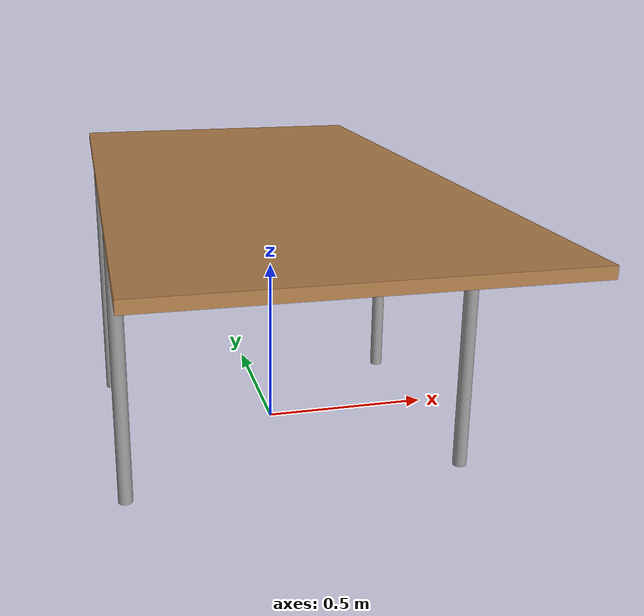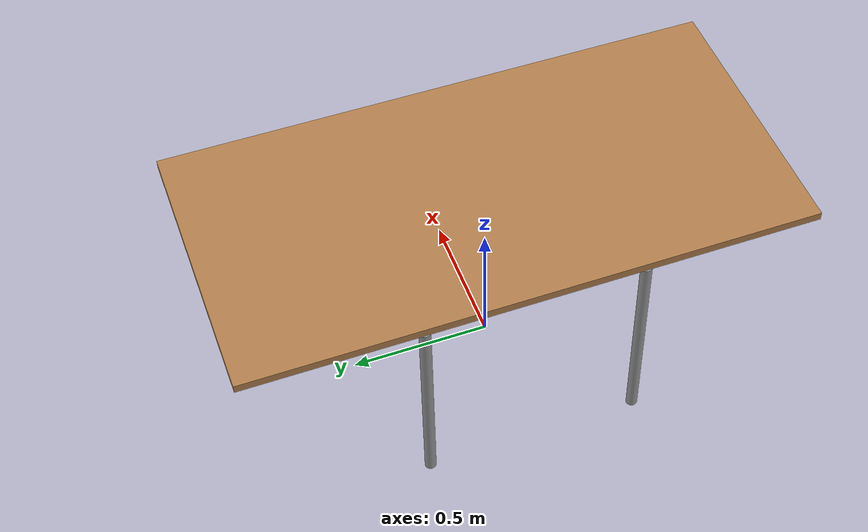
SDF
<?xml version='1.0'?>
<sdf version='1.6'>
  <model name='table1'>
    <link name='link'>
      <velocity_decay>
        <linear>0</linear>
        <angular>0</angular>
      </velocity_decay>
      <self_collide>0</self_collide>
      <kinematic>0</kinematic>
      <gravity>1</gravity>
      <enable_wind>0</enable_wind>
      <pose frame=''>0 0 0 0 -0 0</pose>
      <inertial>
        <mass>1</mass>
        <pose frame=''>0 0 0 0 -0 0</pose>
        <inertia>
          <ixx>1</ixx>
          <ixy>0</ixy>
          <ixz>0</ixz>
          <iyy>1</iyy>
          <iyz>0</iyz>
          <izz>1</izz>
        </inertia>
      </inertial>
      <visual name='visual1'>
        <pose frame=''>0 0 0.75 0 -0 0</pose>
        <geometry>
          <box>
            <size>1 2.0 0.03</size>
          </box>
        </geometry>
        <material>
          <script>
            <uri>file://media/materials/scripts/gazebo.material</uri>
            <name>Gazebo/Wood</name>
          </script>
          <shader type='vertex'>
            <normal_map>__default__</normal_map>
          </shader>
          <ambient>1 1 1 1</ambient>
          <diffuse>1 1 1 1</diffuse>
          <specular>0.2 0.2 0.2 1</specular>
          <emissive>0 0 0 1</emissive>
        </material>
        <transparency>0</transparency>
        <cast_shadows>1</cast_shadows>
      </visual>
      <visual name='front_left_leg'>
        <pose frame=''>0.48 0.38 0.3525 0 -0 0</pose>
        <geometry>
          <cylinder>
            <radius>0.02</radius>
            <length>0.75</length>
          </cylinder>
        </geometry>
        <material>
          <script>
            <uri>file://media/materials/scripts/gazebo.material</uri>
            <name>Gazebo/Grey</name>
          </script>
          <shader type='vertex'>
            <normal_map>__default__</normal_map>
          </shader>
          <ambient>0.3 0.3 0.3 1</ambient>
          <diffuse>0.7 0.7 0.7 1</diffuse>
          <specular>0.01 0.01 0.01 1</specular>
          <emissive>0 0 0 1</emissive>
        </material>
        <transparency>0</transparency>
        <cast_shadows>1</cast_shadows>
      </visual>
      <visual name='front_right_leg'>
        <pose frame=''>0.48 -0.38 0.3525 0 -0 0</pose>
        <geometry>
          <cylinder>
            <radius>0.02</radius>
            <length>0.75</length>
          </cylinder>
        </geometry>
        <material>
          <script>
            <uri>file://media/materials/scripts/gazebo.material</uri>
            <name>Gazebo/Grey</name>
          </script>
          <shader type='vertex'>
            <normal_map>__default__</normal_map>
          </shader>
          <ambient>0.3 0.3 0.3 1</ambient>
          <diffuse>0.7 0.7 0.7 1</diffuse>
          <specular>0.01 0.01 0.01 1</specular>
          <emissive>0 0 0 1</emissive>
        </material>
        <transparency>0</transparency>
        <cast_shadows>1</cast_shadows>
      </visual>
      <visual name='back_right_leg'>
        <pose frame=''>-0.48 -0.38 0.3525 0 -0 0</pose>
        <geometry>
          <cylinder>
            <radius>0.02</radius>
            <length>0.75</length>
          </cylinder>
        </geometry>
        <material>
          <script>
            <uri>file://media/materials/scripts/gazebo.material</uri>
            <name>Gazebo/Grey</name>
          </script>
          <shader type='vertex'>
            <normal_map>__default__</normal_map>
          </shader>
          <ambient>0.3 0.3 0.3 1</ambient>
          <diffuse>0.7 0.7 0.7 1</diffuse>
          <specular>0.01 0.01 0.01 1</specular>
          <emissive>0 0 0 1</emissive>
        </material>
        <transparency>0</transparency>
        <cast_shadows>1</cast_shadows>
      </visual>
      <visual name='back_left_leg'>
        <pose frame=''>-0.48 0.38 0.3525 0 -0 0</pose>
        <geometry>
          <cylinder>
            <radius>0.02</radius>
            <length>0.75</length>
          </cylinder>
        </geometry>
        <material>
          <script>
            <uri>file://media/materials/scripts/gazebo.material</uri>
            <name>Gazebo/Grey</name>
          </script>
          <shader type='vertex'>
            <normal_map>__default__</normal_map>
          </shader>
          <ambient>0.3 0.3 0.3 1</ambient>
          <diffuse>0.7 0.7 0.7 1</diffuse>
          <specular>0.01 0.01 0.01 1</specular>
          <emissive>0 0 0 1</emissive>
        </material>
        <transparency>0</transparency>
        <cast_shadows>1</cast_shadows>
      </visual>
      <collision name='surface'>
        <laser_retro>0</laser_retro>
        <max_contacts>10</max_contacts>
        <pose frame=''>0 0 0.75 0 -0 0</pose>
        <geometry>
          <box>
            <size>1 2.0 0.015</size>
          </box>
        </geometry>
        <surface>
          <friction>
            <ode>
              <mu>1</mu>
              <mu2>1</mu2>
              <fdir1>0 0 0</fdir1>
              <slip1>0</slip1>
              <slip2>0</slip2>
            </ode>
            <torsional>
              <coefficient>1</coefficient>
              <patch_radius>0</patch_radius>
              <surface_radius>0</surface_radius>
              <use_patch_radius>1</use_patch_radius>
              <ode>
                <slip>0</slip>
              </ode>
            </torsional>
          </friction>
          <bounce>
            <restitution_coefficient>0</restitution_coefficient>
            <threshold>1e+06</threshold>
          </bounce>
          <contact>
            <collide_without_contact>0</collide_without_contact>
            <collide_without_contact_bitmask>1</collide_without_contact_bitmask>
            <collide_bitmask>1</collide_bitmask>
            <ode>
              <soft_cfm>0</soft_cfm>
              <soft_erp>0.2</soft_erp>
              <kp>1e+13</kp>
              <kd>1</kd>
              <max_vel>0.01</max_vel>
              <min_depth>0</min_depth>
            </ode>
            <bullet>
              <split_impulse>1</split_impulse>
              <split_impulse_penetration_threshold>-0.01</split_impulse_penetration_threshold>
              <soft_cfm>0</soft_cfm>
              <soft_erp>0.2</soft_erp>
              <kp>1e+13</kp>
              <kd>1</kd>
            </bullet>
          </contact>
        </surface>
      </collision>
      <collision name='front_left_leg'>
        <laser_retro>0</laser_retro>
        <max_contacts>10</max_contacts>
        <pose frame=''>0.48 0.38 0.3525 0 -0 0</pose>
        <geometry>
          <cylinder>
            <radius>0.02</radius>
            <length>0.75</length>
          </cylinder>
        </geometry>
        <surface>
          <friction>
            <ode>
              <mu>1</mu>
              <mu2>1</mu2>
              <fdir1>0 0 0</fdir1>
              <slip1>0</slip1>
              <slip2>0</slip2>
            </ode>
            <torsional>
              <coefficient>1</coefficient>
              <patch_radius>0</patch_radius>
              <surface_radius>0</surface_radius>
              <use_patch_radius>1</use_patch_radius>
              <ode>
                <slip>0</slip>
              </ode>
            </torsional>
          </friction>
          <bounce>
            <restitution_coefficient>0</restitution_coefficient>
            <threshold>1e+06</threshold>
          </bounce>
          <contact>
            <collide_without_contact>0</collide_without_contact>
            <collide_without_contact_bitmask>1</collide_without_contact_bitmask>
            <collide_bitmask>1</collide_bitmask>
            <ode>
              <soft_cfm>0</soft_cfm>
              <soft_erp>0.2</soft_erp>
              <kp>1e+13</kp>
              <kd>1</kd>
              <max_vel>0.01</max_vel>
              <min_depth>0</min_depth>
            </ode>
            <bullet>
              <split_impulse>1</split_impulse>
              <split_impulse_penetration_threshold>-0.01</split_impulse_penetration_threshold>
              <soft_cfm>0</soft_cfm>
              <soft_erp>0.2</soft_erp>
              <kp>1e+13</kp>
              <kd>1</kd>
            </bullet>
          </contact>
        </surface>
      </collision>
      <collision name='front_right_leg'>
        <laser_retro>0</laser_retro>
        <max_contacts>10</max_contacts>
        <pose frame=''>0.48 -0.38 0.3525 0 -0 0</pose>
        <geometry>
          <cylinder>
            <radius>0.02</radius>
            <length>0.75</length>
          </cylinder>
        </geometry>
        <surface>
          <friction>
            <ode>
              <mu>1</mu>
              <mu2>1</mu2>
              <fdir1>0 0 0</fdir1>
              <slip1>0</slip1>
              <slip2>0</slip2>
            </ode>
            <torsional>
              <coefficient>1</coefficient>
              <patch_radius>0</patch_radius>
              <surface_radius>0</surface_radius>
              <use_patch_radius>1</use_patch_radius>
              <ode>
                <slip>0</slip>
              </ode>
            </torsional>
          </friction>
          <bounce>
            <restitution_coefficient>0</restitution_coefficient>
            <threshold>1e+06</threshold>
          </bounce>
          <contact>
            <collide_without_contact>0</collide_without_contact>
            <collide_without_contact_bitmask>1</collide_without_contact_bitmask>
            <collide_bitmask>1</collide_bitmask>
            <ode>
              <soft_cfm>0</soft_cfm>
              <soft_erp>0.2</soft_erp>
              <kp>1e+13</kp>
              <kd>1</kd>
              <max_vel>0.01</max_vel>
              <min_depth>0</min_depth>
            </ode>
            <bullet>
              <split_impulse>1</split_impulse>
              <split_impulse_penetration_threshold>-0.01</split_impulse_penetration_threshold>
              <soft_cfm>0</soft_cfm>
              <soft_erp>0.2</soft_erp>
              <kp>1e+13</kp>
              <kd>1</kd>
            </bullet>
          </contact>
        </surface>
      </collision>
      <collision name='back_right_leg'>
        <laser_retro>0</laser_retro>
        <max_contacts>10</max_contacts>
        <pose frame=''>-0.48 -0.38 0.3525 0 -0 0</pose>
        <geometry>
          <cylinder>
            <radius>0.02</radius>
            <length>0.75</length>
          </cylinder>
        </geometry>
        <surface>
          <friction>
            <ode>
              <mu>1</mu>
              <mu2>1</mu2>
              <fdir1>0 0 0</fdir1>
              <slip1>0</slip1>
              <slip2>0</slip2>
            </ode>
            <torsional>
              <coefficient>1</coefficient>
              <patch_radius>0</patch_radius>
              <surface_radius>0</surface_radius>
              <use_patch_radius>1</use_patch_radius>
              <ode>
                <slip>0</slip>
              </ode>
            </torsional>
          </friction>
          <bounce>
            <restitution_coefficient>0</restitution_coefficient>
            <threshold>1e+06</threshold>
          </bounce>
          <contact>
            <collide_without_contact>0</collide_without_contact>
            <collide_without_contact_bitmask>1</collide_without_contact_bitmask>
            <collide_bitmask>1</collide_bitmask>
            <ode>
              <soft_cfm>0</soft_cfm>
              <soft_erp>0.2</soft_erp>
              <kp>1e+13</kp>
              <kd>1</kd>
              <max_vel>0.01</max_vel>
              <min_depth>0</min_depth>
            </ode>
            <bullet>
              <split_impulse>1</split_impulse>
              <split_impulse_penetration_threshold>-0.01</split_impulse_penetration_threshold>
              <soft_cfm>0</soft_cfm>
              <soft_erp>0.2</soft_erp>
              <kp>1e+13</kp>
              <kd>1</kd>
            </bullet>
          </contact>
        </surface>
      </collision>
      <collision name='back_left_leg'>
        <laser_retro>0</laser_retro>
        <max_contacts>10</max_contacts>
        <pose frame=''>-0.48 0.38 0.3525 0 -0 0</pose>
        <geometry>
          <cylinder>
            <radius>0.02</radius>
            <length>0.75</length>
          </cylinder>
        </geometry>
        <surface>
          <friction>
            <ode>
              <mu>1</mu>
              <mu2>1</mu2>
              <fdir1>0 0 0</fdir1>
              <slip1>0</slip1>
              <slip2>0</slip2>
            </ode>
            <torsional>
              <coefficient>1</coefficient>
              <patch_radius>0</patch_radius>
              <surface_radius>0</surface_radius>
              <use_patch_radius>1</use_patch_radius>
              <ode>
                <slip>0</slip>
              </ode>
            </torsional>
          </friction>
          <bounce>
            <restitution_coefficient>0</restitution_coefficient>
            <threshold>1e+06</threshold>
          </bounce>
          <contact>
            <collide_without_contact>0</collide_without_contact>
            <collide_without_contact_bitmask>1</collide_without_contact_bitmask>
            <collide_bitmask>1</collide_bitmask>
            <ode>
              <soft_cfm>0</soft_cfm>
              <soft_erp>0.2</soft_erp>
              <kp>1e+13</kp>
              <kd>1</kd>
              <max_vel>0.01</max_vel>
              <min_depth>0</min_depth>
            </ode>
            <bullet>
              <split_impulse>1</split_impulse>
              <split_impulse_penetration_threshold>-0.01</split_impulse_penetration_threshold>
              <soft_cfm>0</soft_cfm>
              <soft_erp>0.2</soft_erp>
              <kp>1e+13</kp>
              <kd>1</kd>
            </bullet>
          </contact>
        </surface>
      </collision>
    </link>
    <static>1</static>
    <allow_auto_disable>1</allow_auto_disable>
  </model>
</sdf>
